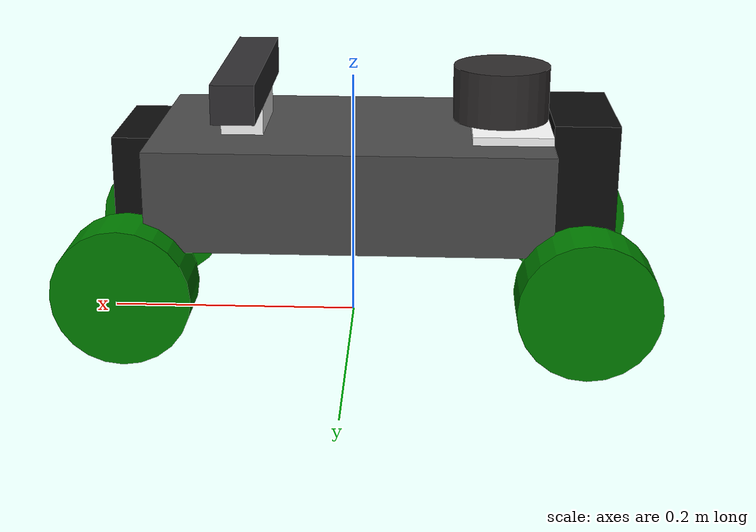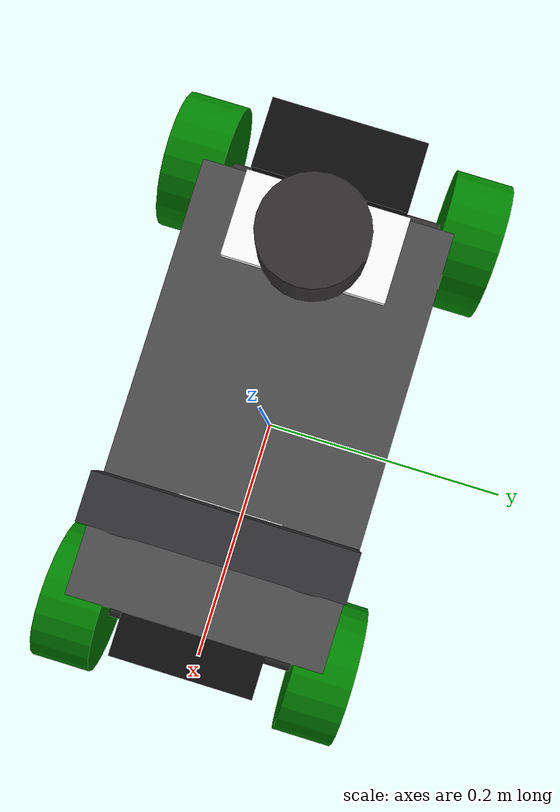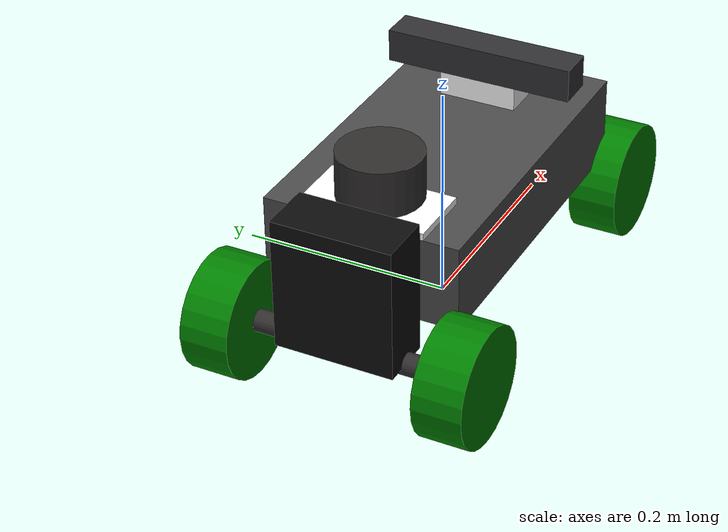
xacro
<?xml version="1.0" encoding="UTF-8"?>
<robot name="traxxas_robot" xmlns:xacro="http://www.ros.org/wiki/xacro">
    <xacro:include filename="$(find traxxas_robot_description)/urdf/common_properties.xacro" />
    <xacro:include filename="$(find traxxas_robot_description)/urdf/mobile_base.xacro" />
    <xacro:include filename="$(find traxxas_robot_description)/urdf/mobile_base_gazebo.xacro" />

    <!-- The original design does not include any camera nor LiDAR.
    To edit original design, comment the following lines.  -->
    <xacro:include filename="$(find traxxas_robot_description)/urdf/zed2.xacro" />
    <xacro:include filename="$(find traxxas_robot_description)/urdf/lidar.xacro" />
</robot>

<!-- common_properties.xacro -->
<robot xmlns:xacro="http://www.ros.org/wiki/xacro">
    <material name="white">
        <color rgba="1 1 1 1" />
    </material>
    <material name="blue">
        <color rgba="0 0 0.5 1" />
    </material>

    <material name="green">
        <color rgba="0 0.5 0 1" />
    </material>

    <material name="grey">
        <color rgba="0.294 0.294 0.294 1" />
    </material>

    <material name="black">
        <color rgba="0.05 0.05 0.05 1" />
    </material>

    <material name="grey_dark">
        <color rgba="0.188 0.176 0.176 1.0"/>
    </material>

    <material name="zed_gray">
        <color rgba="0.189 0.188 0.197 1.0"/>
    </material>

    <xacro:macro name="box_inertia" params="m l w h o_xyz o_rpy">
        <inertial>
            <origin xyz="${o_xyz}" rpy="${o_rpy}"/>
            <mass value="${m}"/>
            <inertia ixx="${m*(w*w + h*h)/12}" ixy="0.0" ixz="0.0" iyy="${m*(l*l + h*h)/12}" iyz="0.0" izz="${m*(w*w + l*l)/12}"/>
        </inertial>
    </xacro:macro>

    <xacro:macro name="sphere_inertia" params="m r o_xyz o_rpy">
        <inertial>
            <origin xyz="${o_xyz}" rpy="${o_rpy}"/>
            <mass value="${m}"/>
            <inertia ixx="${2*m*r*r/5}" ixy="0.0" ixz="0.0"
                     iyy="${2*m*r*r/5}" iyz="0.0"
                     izz="${2*m*r*r/5}"/>
        </inertial>
    </xacro:macro>

    <xacro:macro name="cylinder_inertia" params="m r l o_xyz o_rpy">
        <inertial>
            <origin xyz="${o_xyz}" rpy="${o_rpy}"/>
            <mass value="${m}"/>
            <inertia ixx="${m*(3*r*r + l*l)/12}" ixy="0.0" ixz="0.0"
                     iyy="${m*(3*r*r + l*l)/12}" iyz="0.0"
                     izz="${m*r*r/2}"/>
        </inertial>
    </xacro:macro>
</robot>

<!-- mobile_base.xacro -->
<robot xmlns:xacro="http://www.ros.org/wiki/xacro">
    <!-- PARAMS -->
    <!-- Chassis dimensions -->
    <xacro:property name="chassis_length" value="0.31" />
    <xacro:property name="chassis_width" value="0.18" />
    <xacro:property name="chassis_height" value="0.07869" />
    <xacro:property name="chassis_mass" value="${7850.0 * chassis_length * chassis_width * chassis_height}" />
    <!-- Front suspension dimensions -->
    <xacro:property name="front_suspension_length" value="0.03" />
    <xacro:property name="front_suspension_width" value="0.1" />
    <xacro:property name="front_suspension_height" value="0.10669" />
    <xacro:property name="front_suspension_mass" value="${7850.0 * front_suspension_length * front_suspension_width * front_suspension_height}" />
    <!--Rear suspension dimensions -->
    <xacro:property name="rear_suspension_length" value="0.05" />
    <xacro:property name="rear_suspension_width" value="0.11" />
    <xacro:property name="rear_suspension_height" value="0.12169" />
    <xacro:property name="rear_suspension_mass" value="${7850.0 * rear_suspension_length * rear_suspension_width * rear_suspension_height}" />
    <!-- Wheel dimensions -->
    <xacro:property name="wheel_radius" value="0.0535" />
    <xacro:property name="wheel_width" value="0.045" />
    <xacro:property name="wheel_density" value="900.0" />
    <xacro:property name="wheel_mass" value="${wheel_density * pi * wheel_radius * wheel_radius * wheel_width}" />
    <xacro:property name="wheel_separation" value="0.28" />
    <xacro:property name="wheel_offset" value="${chassis_length / 2.0 - wheel_radius}" />
    <!-- Steering params -->
    <xacro:property name="max_steering_angle" value="0.5236" />
    <xacro:property name="counter_max_steering_angle" value="0.349066" />
    <xacro:property name="max_steering_angular_vel" value="1.570796" />
    <xacro:property name="max_steering_effort" value="1.0" />
    <xacro:property name="max_vel" value="4" />
    <xacro:property name="max_effort" value="10.0" />
    <xacro:property name="max_wheel_angular_vel" value="${max_vel / wheel_radius}" />
    <!-- Front axis -->
    <xacro:property name="front_wheel_axis_width" value="${wheel_separation - (2 * wheel_width)}" />
    <xacro:property name="front_wheel_axis_radius" value="0.01" />
    <!-- Rear axis -->
    <xacro:property name="rear_wheel_axis_width" value="0.17" />
    <xacro:property name="rear_wheel_axis_radius" value="0.01" />

    <!-- XACRO FUNCTIONS -->
    <xacro:macro name="wheel_link" params="prefix">
        <link name="${prefix}_wheel_link">
            <xacro:cylinder_inertia m="${wheel_mass}" r="${wheel_radius}" l="${wheel_width}" o_xyz="0.0 0.0 0.0" o_rpy="${pi/2} 0 0" />
            <visual>
                <origin xyz="0.0 0.0 0.0" rpy="${pi/2} 0 0" />
                <geometry>
                    <cylinder radius="${wheel_radius}" length="${wheel_width}" />
                </geometry>
                <material name="green"/>
            </visual>
            <collision>
                <origin xyz="0.0 0.0 0.0" rpy="${pi/2} 0 0" />
                <geometry>
                    <sphere radius="${wheel_radius}" />
                </geometry>
            </collision>
        </link>
    </xacro:macro>

    <xacro:macro name="steering_link" params="prefix">
        <link name="${prefix}_steering_link">
            <xacro:cylinder_inertia m="0.01" r="0.01" l="0.001" o_xyz="0.0 0.0 0.0" o_rpy="${pi/2} 0.0 0.0" />
            <visual>
                <origin xyz="0.0 0.0 0.0" rpy="${pi / 2.0} 0.0 0.0" />
                <geometry>
                    <cylinder radius="0.01" length="0.001" />
                </geometry>
                <material name="blue"/>
            </visual>
            <collision>
                <origin xyz="0.0 0.0 0.0" rpy="${pi/2} 0.0 0.0" />
                <geometry>
                    <cylinder radius="0.01" length="0.001" />
                </geometry>
            </collision>
        </link>
    </xacro:macro>

    <!-- LINKS -->
    <link name="base_footprint"></link>

    <link name="chassis_link">
        <xacro:box_inertia m="${chassis_mass}" l="${chassis_length}" w="${chassis_width}" h="${chassis_height}" o_xyz="0.0 0.0 ${chassis_height/2}" o_rpy="0.0 0.0 0.0" />
        <visual>
            <origin xyz="0.0 0.0 ${chassis_height/2}" rpy="0.0 0.0 0.0" />
            <geometry>
                <box size="${chassis_length} ${chassis_width} ${chassis_height}" />
            </geometry>
            <material name="grey"/>
        </visual>
        <collision>
            <origin xyz="0.0 0.0 ${chassis_height/2}" rpy="0.0 0.0 0.0" />
            <geometry>
                <box size="${chassis_length} ${chassis_width} ${chassis_height}" />
            </geometry>
        </collision>
    </link>

    <link name="front_suspension_link">
        <xacro:box_inertia m="${front_suspension_mass}" l="${front_suspension_length}" w="${front_suspension_width}" h="${front_suspension_height}" o_xyz="0.0 0.0 ${front_suspension_height/2}" o_rpy="0.0 0.0 0.0" />
        <visual>
            <origin xyz="0.0 0.0 ${front_suspension_height/2}" rpy="0.0 0.0 0.0" />
            <geometry>
                <box size="${front_suspension_length} ${front_suspension_width} ${front_suspension_height}" />
            </geometry>
            <material name="black"/>
        </visual>
        <collision>
            <origin xyz="0.0 0.0 ${front_suspension_height/2}" rpy="0.0 0.0 0.0" />
            <geometry>
                <box size="${front_suspension_length} ${front_suspension_width} ${front_suspension_height}" />
            </geometry>
        </collision>
    </link>

    <link name="rear_suspension_link">
        <xacro:box_inertia m="${rear_suspension_mass}" l="${rear_suspension_length}" w="${rear_suspension_width}" h="${rear_suspension_height}" o_xyz="0.0 0.0 ${rear_suspension_height/2}" o_rpy="0.0 0.0 0.0" />
        <visual>
            <origin xyz="0.0 0.0 ${rear_suspension_height/2}" rpy="0.0 0.0 0.0" />
            <geometry>
                <box size="${rear_suspension_length} ${rear_suspension_width} ${rear_suspension_height}" />
            </geometry>
            <material name="black"/>
        </visual>
        <collision>
            <origin xyz="0.0 0.0 ${rear_suspension_height/2}" rpy="0.0 0.0 0.0" />
            <geometry>
                <box size="${rear_suspension_length} ${rear_suspension_width} ${rear_suspension_height}" />
            </geometry>
        </collision>
    </link>

    <link name="front_axis_link">
        <xacro:cylinder_inertia m="0.01" r="${front_wheel_axis_radius}" l="${front_wheel_axis_width}" o_xyz="0.0 0.0 0.0" o_rpy="${pi/2} 0 0" />
        <visual>
            <origin xyz="0.0 0.0 0.0" rpy="${pi/2} 0 0" />
            <geometry>
                <cylinder radius="${front_wheel_axis_radius}" length="${front_wheel_axis_width}" />
            </geometry>
            <material name="grey_dark" />

        </visual>
        <collision>
            <origin xyz="0.0 0.0 0.0" rpy="${pi/2} 0 0" />
            <geometry>
                <cylinder radius="${front_wheel_axis_radius}" length="${front_wheel_axis_width}" />
            </geometry>
        </collision>
    </link>

    <link name="rear_axis_link">
        <xacro:cylinder_inertia m="0.01" r="${rear_wheel_axis_radius}" l="${rear_wheel_axis_width}" o_xyz="0.0 0.0 0.0" o_rpy="${pi/2} 0 0" />
        <visual>
            <origin xyz="0.0 0.0 0.0" rpy="${pi/2} 0 0" />
            <geometry>
                <cylinder radius="${rear_wheel_axis_radius}" length="${rear_wheel_axis_width}" />
            </geometry>
            <material name="grey_dark" />
        </visual>
        <collision>
            <origin xyz="0.0 0.0 0.0" rpy="${pi/2} 0 0" />
            <geometry>
                <cylinder radius="${rear_wheel_axis_radius}" length="${rear_wheel_axis_width}" />
            </geometry>
        </collision>
    </link>

    <xacro:wheel_link prefix="front_left"/>
    <xacro:wheel_link prefix="front_right"/>
    <xacro:wheel_link prefix="rear_left"/>
    <xacro:wheel_link prefix="rear_right"/>
    <xacro:steering_link prefix="front_left"/>
    <xacro:steering_link prefix="front_right"/>

    <!-- JOINTS -->
    <joint name="footprint_to_chassis_joint" type="fixed">
        <parent link="base_footprint"/>
        <child link="chassis_link"/>
        <origin xyz="0.0 0.0 ${wheel_radius + 0.028}" rpy="0.0 0.0 0.0"/>
        <axis xyz="0.0 1.0 0.0"/>
    </joint>

    <joint name="chassis_to_front_suspension_joint" type="fixed">
        <parent link="chassis_link" />
        <child link="front_suspension_link" />
        <origin xyz="${(chassis_length + front_suspension_length)/2} 0 ${chassis_height - front_suspension_height}" rpy="0.0 0.0 0.0" />
        <axis xyz="0.0 1.0 0.0" />
    </joint>

    <joint name="chassis_to_rear_suspension_joint" type="fixed">
        <parent link="chassis_link" />
        <child link="rear_suspension_link" />
        <origin
            xyz="${-(chassis_length + rear_suspension_length)/2} 0 ${chassis_height - rear_suspension_height + 0.015}"
            rpy="0.0 0.0 0.0" />
        <axis xyz="0 1 0" />
    </joint>

    <joint name="front_suspension_axis_joint" type="fixed">
        <parent link="front_suspension_link" />
        <child link="front_axis_link" />
        <origin xyz="0.0 0.0 0.0" rpy="0.0 0.0 0.0" />
        <axis xyz="0 1 0" />
    </joint>

    <joint name="rear_suspension_axis_joint" type="fixed">
        <parent link="rear_suspension_link" />
        <child link="rear_axis_link" />
        <origin xyz="0.0 0.0 0.0" rpy="0.0 0.0 0.0" />
        <axis xyz="0 1 0" />
    </joint>

    <joint name="rear_left_wheel_joint" type="continuous">
        <parent link="rear_axis_link" />
        <child link="rear_left_wheel_link" />
        <origin xyz="0 ${(rear_wheel_axis_width + wheel_width)/2} 0" rpy="0 0 0" />
        <axis xyz="0 1 0" />
        <limit effort="${max_effort}" velocity="${max_wheel_angular_vel}" />
        <dynamics damping="0.1" friction="0.1"/>
    </joint>

    <joint name="rear_right_wheel_joint" type="continuous">
        <parent link="rear_axis_link" />
        <child link="rear_right_wheel_link" />
        <origin xyz="0 ${-(rear_wheel_axis_width + wheel_width)/2} 0" rpy="0 0 0" />
        <axis xyz="0 1 0" />
        <limit effort="${max_effort}" velocity="${max_wheel_angular_vel}" />
        <dynamics damping="0.1" friction="0.1"/>
    </joint>

    <joint name="front_right_steering_joint" type="revolute">
        <parent link="front_axis_link" />
        <child link="front_right_steering_link" />
        <origin xyz="0 ${-(front_wheel_axis_width/2)} 0" rpy="0 0 0" />
        <axis xyz="0 0 1" />
        <limit lower="${-max_steering_angle}" upper="${counter_max_steering_angle}" effort="${max_steering_effort}" velocity="${max_steering_angular_vel}" />
        <dynamics damping="0.1" friction="0.1"/>
    </joint>

    <joint name="front_right_wheel_joint" type="continuous">
        <parent link="front_right_steering_link" />
        <child link="front_right_wheel_link" />
        <origin xyz="0 0 0" rpy="0 0 0" />
        <axis xyz="0 1 0" />
        <limit effort="${max_effort}" velocity="${max_wheel_angular_vel}" />
        <dynamics damping="0.1" friction="0.1"/>
    </joint>

    <joint name="front_left_steering_joint" type="revolute">
        <parent link="front_axis_link" />
        <child link="front_left_steering_link" />
        <origin xyz="0 ${(front_wheel_axis_width/2)} 0" rpy="0 0 0" />
        <axis xyz="0 0 1" />
        <limit lower="${-counter_max_steering_angle}" upper="${max_steering_angle}" effort="${max_steering_effort}" velocity="${max_steering_angular_vel}" />
        <dynamics damping="0.1" friction="0.1"/>
    </joint>

    <joint name="front_left_wheel_joint" type="continuous">
        <parent link="front_left_steering_link" />
        <child link="front_left_wheel_link" />
        <origin xyz="0 0 0" rpy="0 0 0" />
        <axis xyz="0 1 0" />
        <limit effort="${max_effort}" velocity="${max_wheel_angular_vel}" />
        <dynamics damping="0.1" friction="0.1"/>
    </joint>

</robot>

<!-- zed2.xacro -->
<robot xmlns:xacro="http://www.ros.org/wiki/xacro">
    <!-- Basic ZED2 camera properties -->
    <xacro:property name="zed_length" value="0.033" />
    <xacro:property name="zed_width" value="0.175" />
    <xacro:property name="zed_height" value="0.03" />
    <xacro:property name="lens_radius" value="0.0095" />
    <xacro:property name="lens_offset" value="0.017" />
    <xacro:property name="zed_length_position" value="0.05353" />
    <xacro:property name="zed_mass" value="0.124" />
    <!-- Stand properties -->
    <xacro:property name="stand_length" value="${zed_length}" />
    <xacro:property name="stand_width" value="0.072" />
    <xacro:property name="stand_height" value="0.0214" />

    <!-- Functions -->
    <xacro:macro name="lens" params="prefix">
        <link name="${prefix}_lens_link">
            <xacro:cylinder_inertia m="0.001" r="${lens_radius}" l="0.001" o_xyz="0.0 0.0 0.0" o_rpy="0 ${pi/2} 0" />
            <visual>
                <origin xyz="0.0 0.0 0.0" rpy="0 ${pi/2} 0" />
                <geometry>
                    <cylinder radius="${lens_radius}" length="0.001" />
                </geometry>
                <material name="black"/>
            </visual>
            <collision>
                <origin xyz="0.0 0.0 0.0" rpy="0 ${pi/2} 0" />
                <geometry>
                    <sphere radius="${lens_radius}" />
                </geometry>
            </collision>
        </link>
    </xacro:macro>

    <!-- Links -->
    <link name="stand_link">
        <xacro:box_inertia m="0.3" l="${stand_length}" w="${stand_width}" h="${stand_height}" o_xyz="0.0 0.0 ${stand_height/2}" o_rpy="0.0 0.0 0.0" />
        <visual>
            <origin xyz="0 0 0" rpy="0 0 0" />
            <geometry>
                <box size="${stand_length} ${stand_width} ${stand_height}" />
            </geometry>
            <material name="white" />
        </visual>
        <collision>
            <origin xyz="0 0 0" rpy="0 0 0" />
            <geometry>
                <box size="${stand_length} ${stand_width} ${stand_height}" />
            </geometry>
        </collision>
    </link>

    <link name="zed2_camera_link">
        <xacro:box_inertia l="${zed_length}" w="${zed_width}" h="${zed_height}"
            m="${zed_mass}" o_xyz="0.0 0.0 0.0" o_rpy="0.0 0.0 0.0"/>
        <visual>
            <origin xyz="0 0 0" rpy="0 0 0" />
            <geometry>
                <box size="${zed_length} ${zed_width} ${zed_height}" />
            </geometry>
            <material name="zed_gray"/>
        </visual>
        <collision>
            <origin xyz="0 0 0" rpy="0 0 0" />
            <geometry>
                <box size="${zed_length} ${zed_width} ${zed_height}" />
            </geometry>
        </collision>
    </link>

    <link name="zed2_left_optical"/>
    <xacro:lens prefix="zed2_left" />

    <link name="zed2_right_optical"/>
    <xacro:lens prefix="zed2_right" />

    <!-- Joints -->

    <joint name="zed2_left_to_optical" type="fixed">
        <parent link="zed2_left_lens_link"/>
        <child link="zed2_left_optical"/>
        <origin xyz="0 0 0" rpy="${-pi/2} 0 ${-pi/2}"/>
    </joint>

    <joint name="zed2_right_to_optical" type="fixed">
        <parent link="zed2_right_lens_link"/>
        <child link="zed2_right_optical"/>
        <origin xyz="0 0 0" rpy="${-pi/2} 0 ${-pi/2}"/>
    </joint>

    <joint name="chassis_to_stand" type="fixed">
        <parent link="chassis_link" />
        <child link="stand_link" />
        <origin xyz="${(chassis_length/2) - (stand_length/2) - zed_length_position} 0 ${chassis_height + stand_height/2}" rpy="0 0 0" />
        <axis xyz="1 0 0" />
    </joint>

    <joint name="stand_to_zed2" type="fixed">
        <parent link="stand_link" />
        <child link="zed2_camera_link" />
        <origin xyz="0 0 ${stand_height/2 + zed_height/2}" rpy="0 0 0" />
        <axis xyz="0 1 0" />
    </joint>

    <joint name="zed2_to_left_lens" type="fixed">
        <parent link="zed2_camera_link" />
        <child link="zed2_left_lens_link" />
        <origin xyz="${zed_length/2 + 0.001} ${(zed_width/2) - lens_radius - lens_offset} 0" rpy="0 0 0" />
        <axis xyz="0 1 0" />
    </joint>

    <joint name="zed2_to_right_lens" type="fixed">
        <parent link="zed2_camera_link" />
        <child link="zed2_right_lens_link" />
        <origin xyz="${zed_length/2 + 0.001} -${(zed_width/2) - lens_radius - lens_offset} 0" rpy="0 0 0" />
        <axis xyz="0 1 0" />
    </joint>

    <!-- Gazebo plugins -->
    <gazebo reference="zed2_left_lens_link">
        <sensor type="camera" name="zed2_left_camera">
            <camera>
                <horizontal_fov>1.3962634</horizontal_fov>
                <image>
                    <width>640</width>
                    <height>480</height>
                    <format>R8G8B8</format>
                </image>
                <clip>
                    <near>0.1</near>
                    <far>15.0</far>
                </clip>
                <noise>
                    <type>gaussian</type>
                    <mean>0.0</mean>
                    <stddev>0.001</stddev>
                </noise>
                <optical_frame_id>zed2_left_optical</optical_frame_id>
                <camera_info_topic>zed2_custom/left/camera_info</camera_info_topic>
            </camera>
            <always_on>true</always_on>
            <update_rate>30.0</update_rate>
            <visualize>true</visualize>
            <topic>zed2_custom/left/image_raw</topic>
            <plugin filename="gz-sim-sensors-system" name="gz::sim::systems::Sensors">
                <render_engine>ogre2</render_engine>
            </plugin>
        </sensor>
    </gazebo>

    <gazebo reference="zed2_right_lens_link">
        <sensor type="camera" name="zed2_right_camera">
            <camera>
                <horizontal_fov>1.3962634</horizontal_fov>
                <image>
                    <width>640</width>
                    <height>480</height>
                    <format>R8G8B8</format>
                </image>
                <clip>
                    <near>0.1</near>
                    <far>15.0</far>
                </clip>
                <noise>
                    <type>gaussian</type>
                    <mean>0.0</mean>
                    <stddev>0.001</stddev>
                </noise>
                <optical_frame_id>zed2_right_optical</optical_frame_id>
                <camera_info_topic>zed2_custom/right/camera_info</camera_info_topic>
            </camera>
            <always_on>true</always_on>
            <update_rate>30.0</update_rate>
            <visualize>true</visualize>
            <topic>zed2_custom/right/image_raw</topic>
        </sensor>
    </gazebo>

</robot>

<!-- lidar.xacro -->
<robot xmlns:xacro="http://www.ros.org/wiki/xacro">
    <!-- Lidar base basic properties -->
    <xacro:property name="lidar_base_length" value="0.0616" />
    <xacro:property name="lidar_base_width" value="0.1163" />
    <xacro:property name="lidar_base_height" value="0.00644" />
    <!-- Lidar sensor basic properties -->
    <xacro:property name="lidar_sensor_radius" value="0.038" />
    <xacro:property name="lidar_sensor_height" value="0.04286" />

    <!-- Links -->
    <link name="lidar_base_link">
        <xacro:box_inertia m="0.1" l="${lidar_base_length}" w="${lidar_base_width}" h="${lidar_base_height}" o_xyz="0.0 0.0 ${lidar_base_height/2}" o_rpy="0.0 0.0 0.0" />
        <visual>
            <origin xyz="0 0 0" rpy="0 0 0" />
            <geometry>
                <box size="${lidar_base_length} ${lidar_base_width} ${lidar_base_height}" />
            </geometry>
            <material name="white" />
        </visual>
        <collision>
            <origin xyz="0 0 0" rpy="0 0 0" />
            <geometry>
                <box size="${lidar_base_length} ${lidar_base_width} ${lidar_base_height}" />
            </geometry>
        </collision>
    </link>

    <link name="lidar_link">
        <xacro:cylinder_inertia m="0.1" r="${lidar_sensor_radius}" l="${lidar_sensor_height}" o_xyz="0.0 0.0 0.0" o_rpy="0.0 0.0 0.0"/>
        <visual>
            <origin xyz="0 0 0" rpy="0 0 0" />
            <geometry>
                <cylinder radius="${lidar_sensor_radius}" length="${lidar_sensor_height}" />
            </geometry>
            <material name="grey_dark" />
        </visual>
        <collision>
            <origin xyz="0 0 0" rpy="0 0 0" />
            <geometry>
                <cylinder radius="${lidar_sensor_radius}" length="${lidar_sensor_height}" />
            </geometry>
        </collision>
    </link>

    <!-- Joints -->
    <joint name="chassis_to_lidar_base_joint" type="fixed">
        <parent link="chassis_link" />
        <child link="lidar_base_link" />
        <origin xyz="${-chassis_length/2 + lidar_base_length/2} 0 ${chassis_height + lidar_base_height/2}" rpy="0 0 0" />
        <axis xyz="0 1 0" />
    </joint>

    <joint name="lidar_base_to_lidar_joint" type="fixed">
        <parent link="lidar_base_link" />
        <child link="lidar_link" />
        <origin xyz="${lidar_sensor_radius - lidar_base_length/2} 0 ${lidar_base_height/2 + lidar_sensor_height/2}" rpy="0 0 0" />
    </joint>

    <!-- Gazebo LiDAR sensor plugin -->
    <gazebo reference="lidar_link">
        <sensor name="lidar_sensor" type="gpu_lidar">
            <always_on>true</always_on>
            <pose>0 0 ${lidar_sensor_height/2 - 0.0087} 0 0 0</pose>
            <update_rate>30</update_rate>
            <visualize>true</visualize>
            <topic>/traxxas/scan</topic>
            <gz_frame_id>lidar_link</gz_frame_id>
            <lidar>
                <scan>
                    <horizontal>
                        <samples>320</samples>
                        <resolution>1</resolution>
                        <min_angle>-3.14159</min_angle>
                        <max_angle>3.14159</max_angle>
                    </horizontal>
                </scan>
                <range>
                    <min>0.1</min>
                    <max>30.0</max>
                    <resolution>0.01</resolution>
                </range>
                <noise>
                    <type>gaussian</type>
                    <mean>0.0</mean>
                    <stddev>0.01</stddev>
                </noise>
            </lidar>
        </sensor>
    </gazebo>
</robot>
